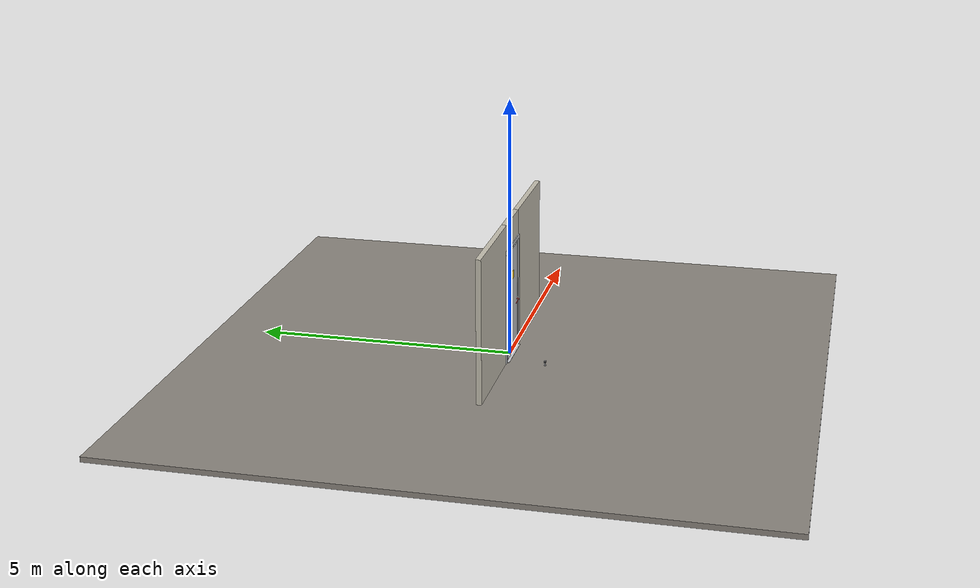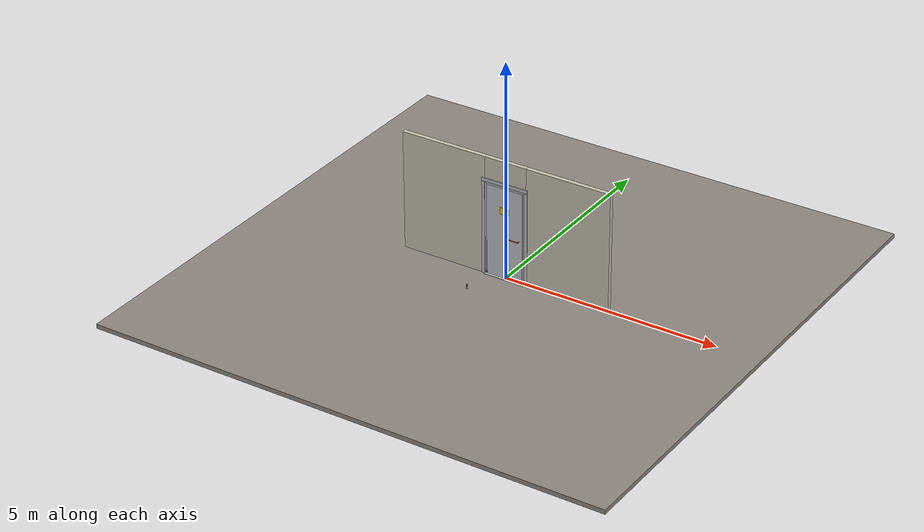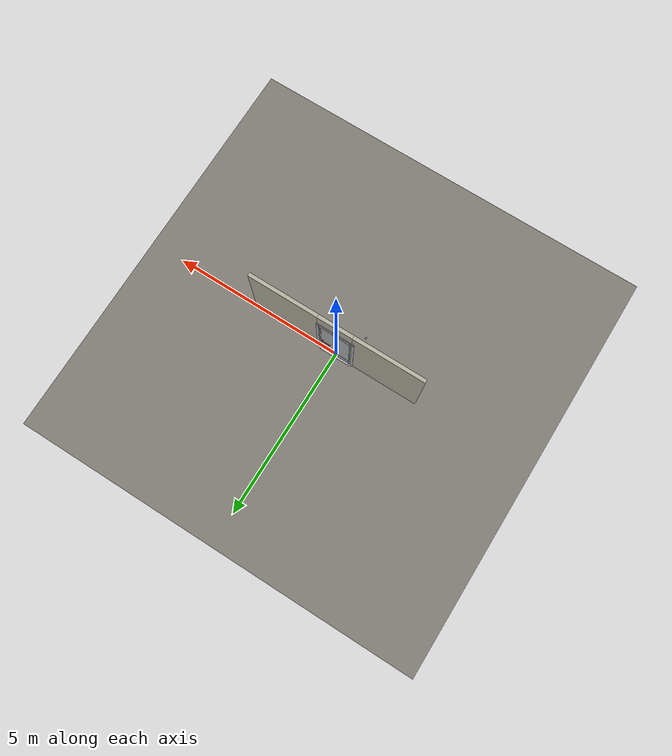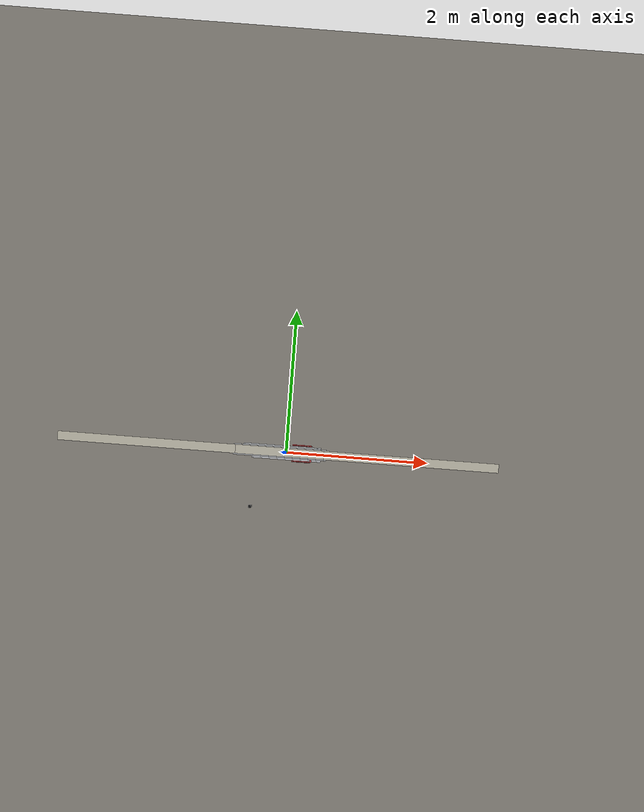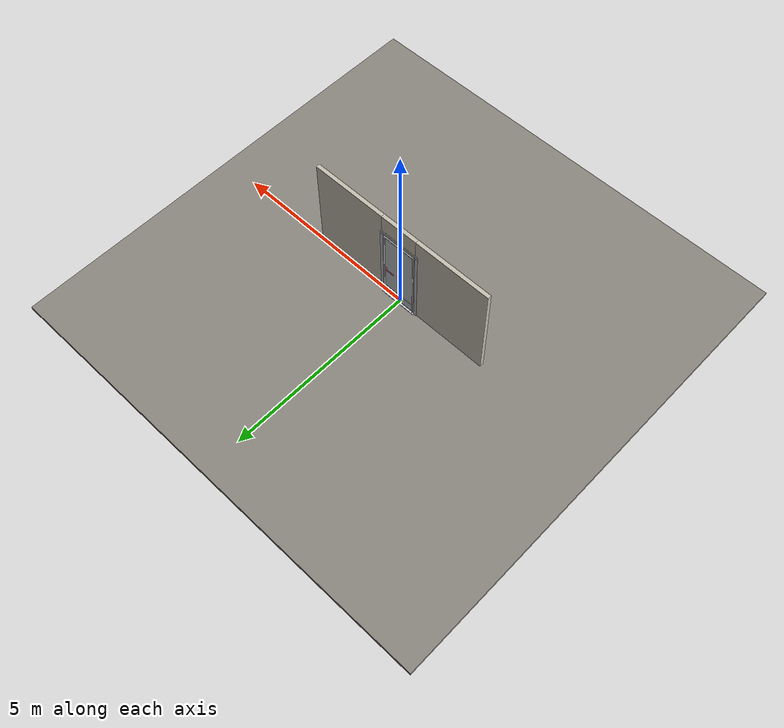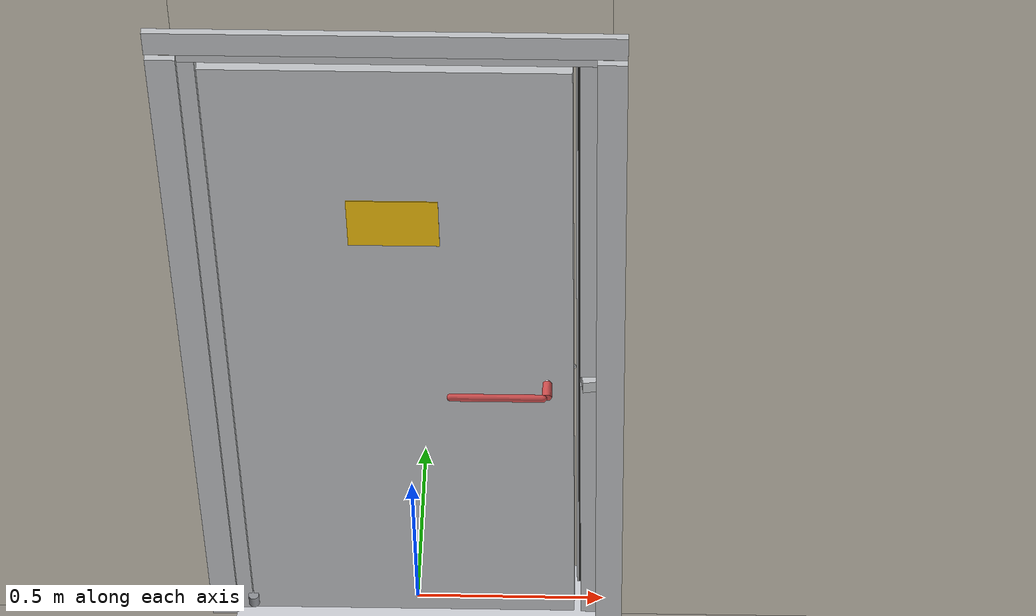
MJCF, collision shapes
<?xml version="1.0" ?>
<mujoco model="db0003_cold_storage_full">
  <compiler angle="radian" meshdir="../../hardware" texturedir="../../textures" autolimits="true" inertiafromgeom="false"/>
  <option timestep="0.002" integrator="implicitfast" cone="elliptic" impratio="10" noslip_iterations="3">
    <flag multiccd="enable"/>
  </option>
  <size memory="16M"/>
  <default>
    <geom condim="4" solref="0.005 1" solimp="0.95 0.99 0.001"/>
    <joint solreflimit="0.005 1" solimplimit="0.95 0.99 0.001"/>
    <tendon solreflimit="0.005 1"/>
    <equality solref="0.002 1"/>
  </default>
  <visual>
    <headlight ambient="0.4 0.4 0.4" diffuse="0.7 0.7 0.7" specular="0.2 0.2 0.2"/>
    <quality shadowsize="4096"/>
    <map znear="0.01" zfar="60"/>
  </visual>
  <asset>
    <mesh name="hinge_05d9a38dfa" file="hinge_05d9a38dfa.obj"/>
    <mesh name="hinge_jamb_953fb56768" file="hinge_jamb_953fb56768.obj"/>
    <mesh name="lever_40740b93f7" file="lever_40740b93f7.obj"/>
    <material name="mat_floor" rgba="0.55 0.53 0.5 1" specular="0.2" shininess="0.15" reflectance="0"/>
    <material name="mat_wall" rgba="0.78 0.76 0.7 1" specular="0.2" shininess="0.1" reflectance="0"/>
    <material name="mat_hinge" rgba="0.55 0.56 0.58 1" specular="0.8" shininess="0.55" reflectance="0.4"/>
    <material name="mat_leaf" rgba="0.75 0.76 0.77 1" specular="0.8" shininess="0.65" reflectance="0.4"/>
    <material name="mat_op_chrome" rgba="0.9 0.9 0.92 1" specular="0.8" shininess="0.9" reflectance="0.4"/>
    <material name="mat_trim" rgba="0.85 0.66 0.3 1" specular="0.8" shininess="0.75" reflectance="0.4"/>
    <material name="mat_bolt" rgba="0.75 0.76 0.77 1" specular="0.8" shininess="0.65" reflectance="0.4"/>
    <material name="mat_frame" rgba="0.75 0.76 0.77 1" specular="0.8" shininess="0.65" reflectance="0.4"/>
    <material name="mat_seal" rgba="0.1 0.1 0.1 1" specular="0.2" shininess="0.1" reflectance="0"/>
    <material name="mat_threshold" rgba="0.8 0.81 0.83 1" specular="0.8" shininess="0.6" reflectance="0.4"/>
    <material name="mat_kick" rgba="0.75 0.76 0.77 1" specular="0.8" shininess="0.65" reflectance="0.4"/>
    <material name="mat_placard" rgba="0.95 0.75 0.05 1" specular="0.2" shininess="0.5" reflectance="0"/>
    <material name="mat_bumper_stop" rgba="0.08 0.08 0.08 1" specular="0.2" shininess="0.1" reflectance="0"/>
    <material name="mat_stop_base" rgba="0.9 0.9 0.92 1" specular="0.8" shininess="0.9" reflectance="0.4"/>
    <texture name="skybox" type="skybox" builtin="gradient" rgb1="0.6 0.7 0.85" rgb2="0.9 0.92 0.95" width="256" height="256"/>
  </asset>
  <worldbody>
    <light name="sun" pos="1.5 -2.5 4" dir="-0.3 0.5 -0.8" directional="true" diffuse="0.8 0.8 0.8" specular="0.3 0.3 0.3" castshadow="true"/>
    <light name="fill" pos="-1.5 2.5 3" dir="0.3 -0.5 -0.7" directional="true" diffuse="0.35 0.35 0.4" castshadow="false"/>
    <camera name="robot_view" pos="0 -2.640625 1.814375" xyaxes="1 0 0 0 0.26963 0.962964" fovy="52"/>
    <camera name="far_view" pos="0 2.640625 1.814375" xyaxes="-1 0 0 0 -0.26963 0.962964" fovy="52"/>
    <camera name="iso" pos="2.006875 -2.218125 2.236875" xyaxes="0.741536 0.670913 0 -0.242917 0.268487 0.932151" fovy="46"/>
    <camera name="detail_handle" pos="0.338 -0.905 1.28" xyaxes="0.97561 0.219512 0 -0.070934 0.315262 0.94635" fovy="38"/>
    <geom name="floor" type="box" size="6 6 0.05" pos="0 0 -0.05" material="mat_floor" group="0" contype="1" conaffinity="1" friction="0.8 0.005 0.0001" density="2400"/>
    <geom name="wall_left" type="box" size="1.0075 0.05 1.375" pos="-1.4925 0 1.375" material="mat_wall" group="0" contype="1" conaffinity="1" friction="0.6 0.005 0.0001" density="800"/>
    <geom name="wall_right" type="box" size="0.9925 0.05 1.375" pos="1.5075 0 1.375" material="mat_wall" group="0" contype="1" conaffinity="1" friction="0.6 0.005 0.0001" density="800"/>
    <geom name="wall_header" type="box" size="0.5 0.05 0.2625" pos="0.015 0 2.4875" material="mat_wall" group="0" contype="1" conaffinity="1" friction="0.6 0.005 0.0001" density="800"/>
    <geom name="hinge_0_jamb" type="mesh" mesh="hinge_jamb_953fb56768" pos="-0.437 -0.057 0.262" material="mat_hinge" group="1" contype="0" conaffinity="0" density="7850"/>
    <geom name="hinge_1_jamb" type="mesh" mesh="hinge_jamb_953fb56768" pos="-0.437 -0.057 1.9464" material="mat_hinge" group="1" contype="0" conaffinity="0" density="7850"/>
    <geom name="jamb_hinge" type="box" size="0.0225 0.05 1.075" pos="-0.4625 0 1.075" material="mat_frame" group="0" contype="1" conaffinity="1" friction="0.6 0.005 0.0001" density="300"/>
    <geom name="strike_1000_wall_n" type="box" size="0.0375 0.02125 0.019" pos="0.4775 0.02875 1" material="mat_frame" group="0" contype="1" conaffinity="1" friction="0.6 0.005 0.0001" density="300"/>
    <geom name="strike_1000_wall_p" type="box" size="0.0375 0.008 0.019" pos="0.4775 -0.0155 1" material="mat_frame" group="0" contype="1" conaffinity="1" friction="0.6 0.005 0.0001" density="300"/>
    <geom name="strike_1000_ramp" type="box" size="0.0375 0.023512 0.019" pos="0.480582 -0.041168 1" quat="0.997211 0 0 0.074638" material="mat_frame" group="0" contype="1" conaffinity="1" friction="0.12 0.005 0.0001" density="300"/>
    <geom name="strike_1000_ramp_n" type="box" size="0.0375 0.023512 0.019" pos="0.480582 0.029168 1" quat="0.997211 0 0 -0.074638" material="mat_frame" group="0" contype="1" conaffinity="1" friction="0.12 0.005 0.0001" density="300"/>
    <geom name="strike_1000_back" type="box" size="0.0325 0.0075 0.019" pos="0.4825 0 1" material="mat_frame" group="0" contype="1" conaffinity="1" friction="0.6 0.005 0.0001" density="300"/>
    <geom name="jamb_strike_0" type="box" size="0.0375 0.05 0.4905" pos="0.4775 0 0.4905" material="mat_frame" group="0" contype="1" conaffinity="1" friction="0.6 0.005 0.0001" density="300"/>
    <geom name="jamb_strike_1" type="box" size="0.0375 0.05 0.5655" pos="0.4775 0 1.5845" material="mat_frame" group="0" contype="1" conaffinity="1" friction="0.6 0.005 0.0001" density="300"/>
    <geom name="jamb_head" type="box" size="0.5 0.05 0.0225" pos="0.015 0 2.1725" material="mat_frame" group="0" contype="1" conaffinity="1" friction="0.6 0.005 0.0001" density="300"/>
    <geom name="head_stud" type="box" size="0.5 0.05 0.015" pos="0.015 0 2.21" material="mat_wall" group="0" contype="1" conaffinity="1" friction="0.6 0.005 0.0001" density="500"/>
    <geom name="stop_hinge" type="box" size="0.0055 0.016 1.075" pos="-0.4345 0.0665 1.075" material="mat_frame" group="0" contype="1" conaffinity="1" friction="0.6 0.005 0.0001" density="300"/>
    <geom name="stop_strike" type="box" size="0.0055 0.016 1.075" pos="0.4345 0.0665 1.075" material="mat_frame" group="0" contype="1" conaffinity="1" friction="0.6 0.005 0.0001" density="300"/>
    <geom name="stop_head" type="box" size="0.44 0.016 0.0055" pos="0 0.0665 2.1445" material="mat_frame" group="0" contype="1" conaffinity="1" friction="0.6 0.005 0.0001" density="300"/>
    <geom name="seal_hinge" type="box" size="0.004 0.005 1.075" pos="-0.437 0.055 1.075" material="mat_seal" group="1" contype="0" conaffinity="0" density="1100"/>
    <geom name="seal_strike" type="box" size="0.004 0.005 1.075" pos="0.437 0.055 1.075" material="mat_seal" group="1" contype="0" conaffinity="0" density="1100"/>
    <geom name="seal_head" type="box" size="0.42 0.005 0.008" pos="0 0.055 2.138" material="mat_seal" group="1" contype="0" conaffinity="0" density="1100"/>
    <geom name="casing_l_n" type="box" size="0.035 0.008 1.0975" pos="-0.515 -0.058 1.075" material="mat_frame" group="2" contype="0" conaffinity="0" density="300"/>
    <geom name="casing_r_n" type="box" size="0.035 0.008 1.0975" pos="0.515 -0.058 1.075" material="mat_frame" group="2" contype="0" conaffinity="0" density="300"/>
    <geom name="casing_h_n" type="box" size="0.55 0.008 0.035" pos="0 -0.058 2.225" material="mat_frame" group="2" contype="0" conaffinity="0" density="300"/>
    <geom name="casing_l_p" type="box" size="0.035 0.008 1.0975" pos="-0.515 0.058 1.075" material="mat_frame" group="2" contype="0" conaffinity="0" density="300"/>
    <geom name="casing_r_p" type="box" size="0.035 0.008 1.0975" pos="0.515 0.058 1.075" material="mat_frame" group="2" contype="0" conaffinity="0" density="300"/>
    <geom name="casing_h_p" type="box" size="0.55 0.008 0.035" pos="0 0.058 2.225" material="mat_frame" group="2" contype="0" conaffinity="0" density="300"/>
    <geom name="threshold" type="box" size="0.485 0.1 0.004" pos="0 0 0.004" material="mat_threshold" group="0" contype="1" conaffinity="1" friction="0.6 0.005 0.0001" density="2700"/>
    <geom name="door_stop_base" type="cylinder" size="0.022 0.003" pos="-0.453 -0.788 0.003" material="mat_stop_base" group="0" contype="1" conaffinity="1" friction="0.6 0.005 0.0001" density="7850"/>
    <geom name="door_stop_post" type="cylinder" size="0.012 0.0245" pos="-0.453 -0.788 0.0305" material="mat_stop_base" group="0" contype="1" conaffinity="1" friction="0.6 0.005 0.0001" density="7850"/>
    <geom name="door_stop_bumper" type="cylinder" size="0.022 0.02" pos="-0.453 -0.788 0.075" material="mat_bumper_stop" group="0" contype="1" conaffinity="1" friction="0.6 0.005 0.0001" density="1100"/>
    <site name="approach_point" pos="0 -1.5 0" quat="1 0 0 0" size="0.05" rgba="0.2 0.9 0.2 0.5" group="4"/>
    <site name="goal_point" pos="0 1.5 0" quat="1 0 0 0" size="0.05" rgba="0.2 0.9 0.2 0.5" group="4"/>
    <site name="door_plane_center" pos="0 0 1.075" quat="1 0 0 0" size="0.02" rgba="0.2 0.9 0.2 0.5" group="4"/>
    <body name="leaf_riser" pos="-0.44 0 0">
      <inertial pos="0.003 -0.057 0.055" mass="0.174012" quat="0.707107 0 0.707107 0" diaginertia="0.000017053 0.00002732 0.00002732"/>
      <joint name="leaf_rise" type="slide" axis="0 0 1" limited="true" range="0 0.0264" damping="1" armature="0.5"/>
      <geom name="leaf_riser_marker" type="cylinder" size="0.014 0.018" pos="0.003 -0.057 0.055" material="mat_hinge" group="1" contype="0" conaffinity="0" density="7850"/>
      <body name="leaf" pos="0 0 0">
        <inertial pos="0.416303 0.00077 1.020389" mass="43.742116" quat="0.499366 -0.502666 0.494059 0.503851" diaginertia="2.91260914 17.977254767 20.804250736"/>
        <joint name="leaf_hinge" type="hinge" axis="0 0 -1" pos="0.003 -0.057 0" limited="true" range="0 1.570796" solreflimit="0.02 1" damping="0.260422" frictionloss="5.419886" armature="0.02"/>
        <geom name="leaf_slab" type="box" size="0.43 0.05 1.0572" pos="0.433 0 1.0692" material="mat_leaf" group="0" contype="1" conaffinity="1" friction="0.35 0.005 0.0001" density="1"/>
        <geom name="hinge_0" type="mesh" mesh="hinge_05d9a38dfa" pos="0.003 -0.057 0.262" material="mat_hinge" group="1" contype="0" conaffinity="0" density="7850"/>
        <geom name="hinge_1" type="mesh" mesh="hinge_05d9a38dfa" pos="0.003 -0.057 1.9464" material="mat_hinge" group="1" contype="0" conaffinity="0" density="7850"/>
        <geom name="kick_plate_p" type="box" size="0.4 0.0008 0.125" pos="0.433 0.0508 0.147" material="mat_kick" group="2" contype="0" conaffinity="0" density="7900"/>
        <geom name="warning_placard" type="box" size="0.11 0.001 0.08" pos="0.433 -0.051 1.5978" material="mat_placard" group="2" contype="0" conaffinity="0" density="1000"/>
        <site name="leaf_edge_mid" pos="0.863 0 1.0572" quat="1 0 0 0" size="0.02" rgba="0.2 0.9 0.2 0.5" group="4"/>
        <body name="leaf_handle" pos="0.798 0 1">
          <inertial pos="-0.046153 0 0" mass="2.987827" quat="0.707107 0 0 -0.707107" diaginertia="0.018437997 0.023746754 0.040214564"/>
          <joint name="leaf_handle_hinge" type="hinge" axis="0 -1 0" limited="true" range="0 0.5" damping="0.589936" frictionloss="0.07" stiffness="2.5" springref="-0.96" armature="0.01"/>
          <geom name="leaf_handle_spindle" type="cylinder" size="0.006 0.058" pos="0 0 0" quat="0.707107 -0.707107 0 0" material="mat_op_chrome" group="1" contype="0" conaffinity="0" density="7850"/>
          <geom name="leaf_handle_lever_n" type="mesh" mesh="lever_40740b93f7" pos="0 -0.05 0" quat="0.707107 0.707107 0 0" material="mat_op_chrome" group="1" contype="0" conaffinity="0" density="3000"/>
          <geom name="leaf_handle_lever_col_n" type="capsule" size="0.0095 0.1155" pos="-0.125 -0.105 0" quat="0.707107 0 -0.707107 0" material="mat_op_chrome" group="3" contype="1" conaffinity="1" rgba="0.8 0.3 0.3 0.25" friction="0.7 0.01 0.0001" density="3000"/>
          <geom name="leaf_handle_hub_col_n" type="cylinder" size="0.012 0.022" pos="0 -0.08 0" quat="0.707107 -0.707107 0 0" material="mat_op_chrome" group="3" contype="1" conaffinity="1" rgba="0.8 0.3 0.3 0.25" friction="0.6 0.005 0.0001" density="3000"/>
          <geom name="leaf_handle_lever_p" type="mesh" mesh="lever_40740b93f7" pos="0 0.05 0" quat="-0.707107 0.707107 0 0" material="mat_op_chrome" group="1" contype="0" conaffinity="0" density="3000"/>
          <geom name="leaf_handle_lever_col_p" type="capsule" size="0.0095 0.1155" pos="-0.125 0.105 0" quat="0.707107 0 -0.707107 0" material="mat_op_chrome" group="3" contype="1" conaffinity="1" rgba="0.8 0.3 0.3 0.25" friction="0.7 0.01 0.0001" density="3000"/>
          <geom name="leaf_handle_hub_col_p" type="cylinder" size="0.012 0.022" pos="0 0.08 0" quat="0.707107 -0.707107 0 0" material="mat_op_chrome" group="3" contype="1" conaffinity="1" rgba="0.8 0.3 0.3 0.25" friction="0.6 0.005 0.0001" density="3000"/>
          <site name="leaf_handle_grip_n" pos="-0.2 -0.105 0" quat="1 0 0 0" size="0.012" rgba="0.2 0.9 0.2 0.5" group="4"/>
          <site name="leaf_handle_grip_p" pos="-0.2 0.105 0" quat="1 0 0 0" size="0.012" rgba="0.2 0.9 0.2 0.5" group="4"/>
        </body>
        <body name="leaf_latch_bolt" pos="0.863 0 1">
          <inertial pos="-0.012 0 0" mass="0.030762" quat="0 0 0.707107 0.707107" diaginertia="0.000000526 0.000002949 0.000002949"/>
          <joint name="leaf_latch_bolt_slide" type="slide" axis="-1 0 0" limited="true" range="0 0.006" damping="2" frictionloss="0.3" stiffness="3000" springref="-0.004" armature="0.1"/>
          <geom name="leaf_latch_bolt_capsule" type="capsule" size="0.006 0.012" pos="-0.012 0 0" quat="0.707107 0 0.707107 0" material="mat_bolt" group="0" contype="1" conaffinity="1" friction="0.2 0.005 0.0001" density="8500"/>
        </body>
      </body>
    </body>
  </worldbody>
  <tendon>
    <fixed name="leaf_latch_bolt_coupling" limited="true" range="0 10">
      <joint joint="leaf_latch_bolt_slide" coef="1"/>
      <joint joint="leaf_handle_hinge" coef="-0.012766"/>
    </fixed>
  </tendon>
  <equality>
    <joint name="leaf_rise_couple" joint1="leaf_rise" joint2="leaf_hinge" polycoef="0 0.007639 0 0 0" active="true"/>
  </equality>
  <sensor>
    <jointpos name="leaf_hinge_pos" joint="leaf_hinge"/>
    <jointvel name="leaf_hinge_vel" joint="leaf_hinge"/>
    <jointpos name="leaf_handle_hinge_pos" joint="leaf_handle_hinge"/>
    <jointvel name="leaf_handle_hinge_vel" joint="leaf_handle_hinge"/>
    <jointpos name="leaf_latch_bolt_slide_pos" joint="leaf_latch_bolt_slide"/>
    <jointvel name="leaf_latch_bolt_slide_vel" joint="leaf_latch_bolt_slide"/>
  </sensor>
</mujoco>
